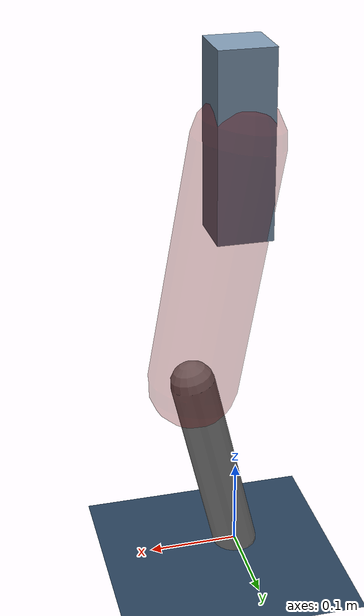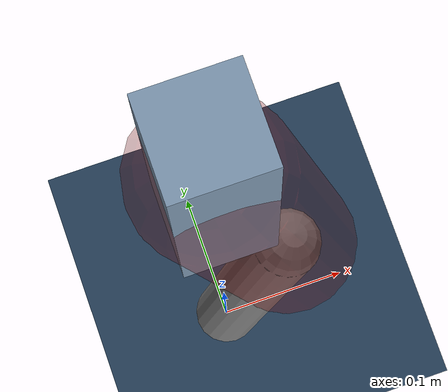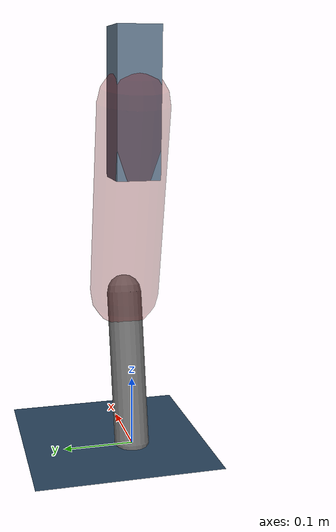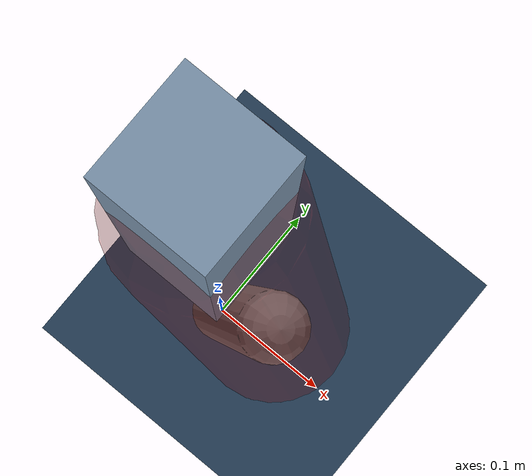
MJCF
<mujoco model="Hopper2D">
	<compiler inertiafromgeom="true" angle="radian" />
	<option timestep="0.001" integrator="implicit" cone="elliptic" solver="Newton" tolerance="1e-10" />

	<default>
		<geom contype="1" conaffinity="1" condim="3" friction="2 0.005 0.0001" solref="0.005 1" />
		<joint limited="true" damping="0.1" />
	</default>

	<asset>
		<texture name="skybox" type="skybox" builtin="gradient" rgb1=".4 .6 .8" rgb2="0 0 0" width="800" height="800" />
		<texture name="grid" type="2d" builtin="checker" rgb1=".1 .2 .3" rgb2=".2 .3 .4" width="300" height="300" mark="edge" markrgb=".2 .3 .4" />
		<material name="ground" texture="grid" texrepeat="1 1" texuniform="true" reflectance="0.1" />
		<material name="leg" rgba="0.5 0.6 0.7 1" />
	</asset>

	<worldbody>

		<geom name="floor" type="plane" size="5 5 0.25" material="ground" />

		<light directional="false" diffuse="0.8 0.8 0.8" specular="0.3 0.3 0.3" pos="0 0 2" dir="0 0 -1" />
		<light mode="targetbodycom" target="base" directional="false" diffuse="0.8 0.8 0.8" specular="0.3 0.3 0.3" pos="0 0 2" dir="0 0 -1" />

		<camera name="fixed" pos="0 -2 1" xyaxes="1 0 0 0 0 1" />
		<camera name="tracking" mode="trackcom" pos="0 -3 1" />

		<body name="root" pos="0 0 0.48860572874607167">
			<joint name="slide_x" type="slide" axis="1 0 0" range="-100 100" />
			<joint name="slide_z" type="slide" axis="0 0 1" range="0 10" />

			<body name="base" pos="0 0 0">
				<geom name="torso" type="box" size="0.03 0.03 0.1" mass="2.068" material="leg" />

				<body name="link1" pos="0 0 0" euler="0 1.3913978132819325 0">
					<joint type="hinge" axis="0 -1 0" pos="0 0 0" name="hinge1" limited="true" range="-3.14 3.14" stiffness="0" damping="0.1" />
					<geom name="thigh" type="capsule" fromto="0 0 0 0.27666100129206717 0 0" size="0.05" rgba="0.5 0 0 0.3" mass="0.9262847034885813" />

					<body name="link2" pos="0.27666100129206717 0 0" euler="0 0.40370290129181163 0">
						<joint type="hinge" axis="0 -1 0" pos="0 0 0" name="hinge2" limited="true" range="-3.14 3.14" stiffness="0" damping="0.1" />
						<geom name="shank" type="capsule" fromto="0 0 0 0.2219447274540045 0 0" size="0.025" mass="0.4192557819632036" />

					</body>
				</body>
			</body>
		</body>
	</worldbody>

	<actuator>
		<motor name="torque1" joint="hinge1" ctrlrange="-44.95455540533326 44.95455540533326" ctrllimited="true" gear="1" />
		<motor name="torque2" joint="hinge2" ctrlrange="-73.7667427498737 73.7667427498737" ctrllimited="true" gear="1" />
	</actuator>
</mujoco>
